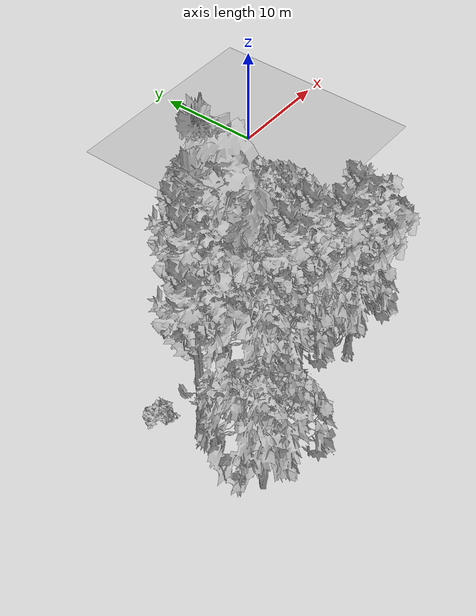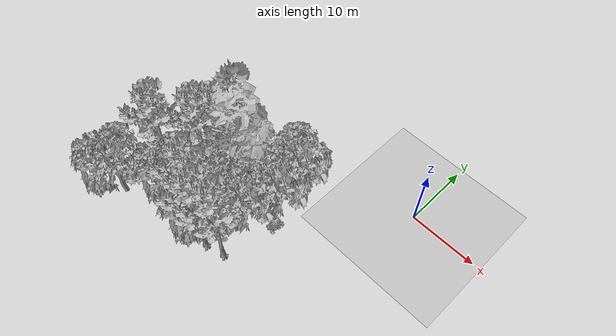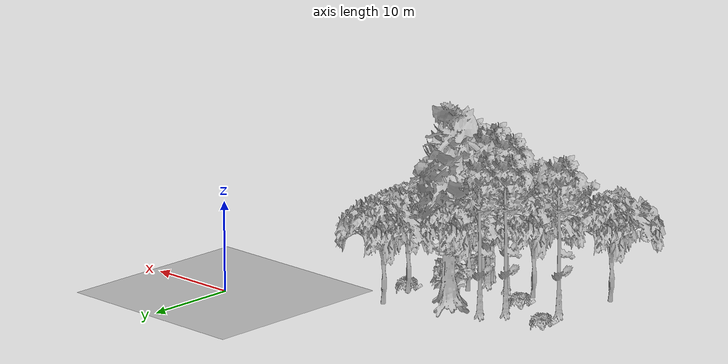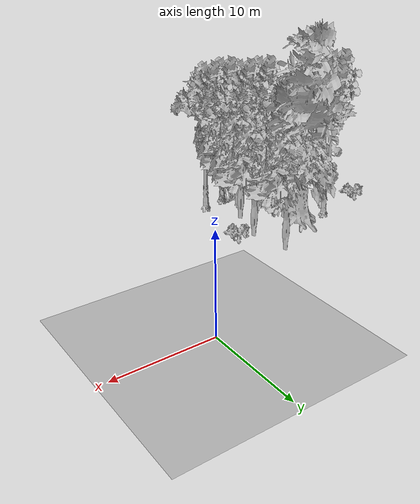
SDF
<sdf version="1.7">
 <world name="default">
  <model name="ground_plane">
   <static>1</static>
   <link name="link">
    <collision name="collision">
     <geometry><plane><normal>0 0 1</normal><size>100 100</size></plane></geometry>
     <surface><contact><ode><min_depth>0.01</min_depth><max_vel>0</max_vel></ode></contact></surface>
    </collision>
    <visual name="grass">
     <cast_shadows>0</cast_shadows>
     <geometry>
      <mesh>
       <scale>0.41000000000000003 0.41000000000000003 0.1</scale>
       <uri>file://grass_plane/meshes/grass_plane.dae</uri>
      </mesh>
     </geometry>
    </visual>
   </link>
  </model>
  <model name="Tree 68">
   <static>1</static>
   <pose>-20.85613020271379 -21.27397759455786 0 1.57079 -0 0</pose>
   <link name="link">
    <collision name="collision">
     <geometry><mesh><scale>5 5 5</scale><uri>model://tree_9/meshes/tree_9.obj</uri></mesh></geometry>
    </collision>
    <visual name="visual">
     <geometry><mesh><scale>5 5 5</scale><uri>model://tree_9/meshes/tree_9.obj</uri></mesh></geometry>
    </visual>
   </link>
  </model>
  <model name="Tree 109">
   <static>1</static>
   <pose>-18.044318254047667 -22.158993474650302 0 1.57079 -0 0</pose>
   <link name="link">
    <collision name="collision">
     <geometry><mesh><scale>5 5 5</scale><uri>model://tree_2/meshes/tree_2.obj</uri></mesh></geometry>
    </collision>
    <visual name="visual">
     <geometry><mesh><scale>5 5 5</scale><uri>model://tree_2/meshes/tree_2.obj</uri></mesh></geometry>
    </visual>
   </link>
  </model>
  <model name="Tree 186">
   <static>1</static>
   <pose>-31.621482010788085 -25.831532573165493 0 1.57079 -0 0</pose>
   <link name="link">
    <collision name="collision">
     <geometry><mesh><scale>5 5 5</scale><uri>model://tree_2/meshes/tree_2.obj</uri></mesh></geometry>
    </collision>
    <visual name="visual">
     <geometry><mesh><scale>5 5 5</scale><uri>model://tree_2/meshes/tree_2.obj</uri></mesh></geometry>
    </visual>
   </link>
  </model>
  <model name="Tree 275">
   <static>1</static>
   <pose>-18.407030141554333 -18.08380873327686 0 1.57079 -0 0</pose>
   <link name="link">
    <collision name="collision">
     <geometry><mesh><scale>5 5 5</scale><uri>model://tree_2/meshes/tree_2.obj</uri></mesh></geometry>
    </collision>
    <visual name="visual">
     <geometry><mesh><scale>5 5 5</scale><uri>model://tree_2/meshes/tree_2.obj</uri></mesh></geometry>
    </visual>
   </link>
  </model>
  <model name="Tree 292">
   <static>1</static>
   <pose>-18.081707227203406 -21.30981378207448 0 1.57079 -0 0</pose>
   <link name="link">
    <collision name="collision">
     <geometry><mesh><scale>5 5 5</scale><uri>model://tree_9/meshes/tree_9.obj</uri></mesh></geometry>
    </collision>
    <visual name="visual">
     <geometry><mesh><scale>5 5 5</scale><uri>model://tree_9/meshes/tree_9.obj</uri></mesh></geometry>
    </visual>
   </link>
  </model>
  <model name="Tree 303">
   <static>1</static>
   <pose>-14.913574780661378 -8.78419512537264 0 1.57079 -0 0</pose>
   <link name="link">
    <collision name="collision">
     <geometry><mesh><scale>5 5 5</scale><uri>model://tree_2/meshes/tree_2.obj</uri></mesh></geometry>
    </collision>
    <visual name="visual">
     <geometry><mesh><scale>5 5 5</scale><uri>model://tree_2/meshes/tree_2.obj</uri></mesh></geometry>
    </visual>
   </link>
  </model>
  <model name="Tree 307">
   <static>1</static>
   <pose>-17.61760655635346 -20.99757013027722 0 1.57079 -0 0</pose>
   <link name="link">
    <collision name="collision">
     <geometry><mesh><scale>5 5 5</scale><uri>model://tree_2/meshes/tree_2.obj</uri></mesh></geometry>
    </collision>
    <visual name="visual">
     <geometry><mesh><scale>5 5 5</scale><uri>model://tree_2/meshes/tree_2.obj</uri></mesh></geometry>
    </visual>
   </link>
  </model>
  <model name="Tree 326">
   <static>1</static>
   <pose>-14.108015775769509 -22.625026654799797 0 1.57079 -0 0</pose>
   <link name="link">
    <collision name="collision">
     <geometry><mesh><scale>5 5 5</scale><uri>model://tree_9/meshes/tree_9.obj</uri></mesh></geometry>
    </collision>
    <visual name="visual">
     <geometry><mesh><scale>5 5 5</scale><uri>model://tree_9/meshes/tree_9.obj</uri></mesh></geometry>
    </visual>
   </link>
  </model>
  <model name="Tree 332">
   <static>1</static>
   <pose>-14.19754366162212 -13.25863289107452 0 1.57079 -0 0</pose>
   <link name="link">
    <collision name="collision">
     <geometry><mesh><scale>5 5 5</scale><uri>model://tree_2/meshes/tree_2.obj</uri></mesh></geometry>
    </collision>
    <visual name="visual">
     <geometry><mesh><scale>5 5 5</scale><uri>model://tree_2/meshes/tree_2.obj</uri></mesh></geometry>
    </visual>
   </link>
  </model>
  <model name="Tree 334">
   <static>1</static>
   <pose>-24.312002417522095 -13.295940552619044 0 1.57079 -0 0</pose>
   <link name="link">
    <collision name="collision">
     <geometry><mesh><scale>5 5 5</scale><uri>model://tree_9/meshes/tree_9.obj</uri></mesh></geometry>
    </collision>
    <visual name="visual">
     <geometry><mesh><scale>5 5 5</scale><uri>model://tree_9/meshes/tree_9.obj</uri></mesh></geometry>
    </visual>
   </link>
  </model>
  <model name="Tree 354">
   <static>1</static>
   <pose>-24.93131574499724 -21.111950874562247 0 1.57079 -0 0</pose>
   <link name="link">
    <collision name="collision">
     <geometry><mesh><scale>5 5 5</scale><uri>model://tree_2/meshes/tree_2.obj</uri></mesh></geometry>
    </collision>
    <visual name="visual">
     <geometry><mesh><scale>5 5 5</scale><uri>model://tree_2/meshes/tree_2.obj</uri></mesh></geometry>
    </visual>
   </link>
  </model>
  <model name="Tree 383">
   <static>1</static>
   <pose>-15.647386984022432 -17.670154728674646 0 1.57079 -0 0</pose>
   <link name="link">
    <collision name="collision">
     <geometry><mesh><scale>5 5 5</scale><uri>model://tree_2/meshes/tree_2.obj</uri></mesh></geometry>
    </collision>
    <visual name="visual">
     <geometry><mesh><scale>5 5 5</scale><uri>model://tree_2/meshes/tree_2.obj</uri></mesh></geometry>
    </visual>
   </link>
  </model>
  <model name="Tree 411">
   <static>1</static>
   <pose>-16.883957403547782 -23.30895235521313 0 1.57079 -0 0</pose>
   <link name="link">
    <collision name="collision">
     <geometry><mesh><scale>5 5 5</scale><uri>model://tree_9/meshes/tree_9.obj</uri></mesh></geometry>
    </collision>
    <visual name="visual">
     <geometry><mesh><scale>5 5 5</scale><uri>model://tree_9/meshes/tree_9.obj</uri></mesh></geometry>
    </visual>
   </link>
  </model>
  <model name="Tree 412">
   <static>1</static>
   <pose>-20.452195706555372 -12.830890614539534 0 1.57079 -0 0</pose>
   <link name="link">
    <collision name="collision">
     <geometry><mesh><scale>5 5 5</scale><uri>model://tree_4/meshes/tree_4.obj</uri></mesh></geometry>
    </collision>
    <visual name="visual">
     <geometry><mesh><scale>5 5 5</scale><uri>model://tree_4/meshes/tree_4.obj</uri></mesh></geometry>
    </visual>
   </link>
  </model>
  <model name="Tree 423">
   <static>1</static>
   <pose>-30.29818477126853 -18.9280716475167 0 1.57079 -0 0</pose>
   <link name="link">
    <collision name="collision">
     <geometry><mesh><scale>5 5 5</scale><uri>model://tree_9/meshes/tree_9.obj</uri></mesh></geometry>
    </collision>
    <visual name="visual">
     <geometry><mesh><scale>5 5 5</scale><uri>model://tree_9/meshes/tree_9.obj</uri></mesh></geometry>
    </visual>
   </link>
  </model>
  <model name="Tree 426">
   <static>1</static>
   <pose>-19.769860203672128 -14.944252016866841 0 1.57079 -0 0</pose>
   <link name="link">
    <collision name="collision">
     <geometry><mesh><scale>5 5 5</scale><uri>model://tree_2/meshes/tree_2.obj</uri></mesh></geometry>
    </collision>
    <visual name="visual">
     <geometry><mesh><scale>5 5 5</scale><uri>model://tree_2/meshes/tree_2.obj</uri></mesh></geometry>
    </visual>
   </link>
  </model>
  <model name="Tree 485">
   <static>1</static>
   <pose>-26.0786702840868 -15.364509413307637 0 1.57079 -0 0</pose>
   <link name="link">
    <collision name="collision">
     <geometry><mesh><scale>5 5 5</scale><uri>model://tree_9/meshes/tree_9.obj</uri></mesh></geometry>
    </collision>
    <visual name="visual">
     <geometry><mesh><scale>5 5 5</scale><uri>model://tree_9/meshes/tree_9.obj</uri></mesh></geometry>
    </visual>
   </link>
  </model>
  <model name="Bush 15">
   <static>1</static>
   <pose>-31.201467127249934 -15.571481662002952 0 1.57079 -0 0</pose>
   <link name="link">
    <collision name="collision">
     <geometry><mesh><scale>2 2 2</scale><uri>model://bush_2/meshes/bush_2.obj</uri></mesh></geometry>
    </collision>
    <visual name="visual">
     <geometry><mesh><scale>5 5 5</scale><uri>model://bush_2/meshes/bush_2.obj</uri></mesh></geometry>
    </visual>
   </link>
  </model>
  <model name="Bush 20">
   <static>1</static>
   <pose>-16.83612294812972 -21.920979918639595 0 1.57079 -0 0</pose>
   <link name="link">
    <collision name="collision">
     <geometry><mesh><scale>2 2 2</scale><uri>model://bush_4/meshes/bush_4.obj</uri></mesh></geometry>
    </collision>
    <visual name="visual">
     <geometry><mesh><scale>5 5 5</scale><uri>model://bush_4/meshes/bush_4.obj</uri></mesh></geometry>
    </visual>
   </link>
  </model>
  <model name="Bush 31">
   <static>1</static>
   <pose>-12.924426158795413 -14.649970718511973 0 1.57079 -0 0</pose>
   <link name="link">
    <collision name="collision">
     <geometry><mesh><scale>2 2 2</scale><uri>model://bush_2/meshes/bush_2.obj</uri></mesh></geometry>
    </collision>
    <visual name="visual">
     <geometry><mesh><scale>5 5 5</scale><uri>model://bush_2/meshes/bush_2.obj</uri></mesh></geometry>
    </visual>
   </link>
  </model>
  <model name="Bush 73">
   <static>1</static>
   <pose>-25.05188404693697 -19.06455192061688 0 1.57079 -0 0</pose>
   <link name="link">
    <collision name="collision">
     <geometry><mesh><scale>2 2 2</scale><uri>model://bush_2/meshes/bush_2.obj</uri></mesh></geometry>
    </collision>
    <visual name="visual">
     <geometry><mesh><scale>5 5 5</scale><uri>model://bush_2/meshes/bush_2.obj</uri></mesh></geometry>
    </visual>
   </link>
  </model>
  <model name="Bush 97">
   <static>1</static>
   <pose>-18.71863539602417 -15.486902252365923 0 1.57079 -0 0</pose>
   <link name="link">
    <collision name="collision">
     <geometry><mesh><scale>2 2 2</scale><uri>model://bush_1/meshes/bush_1.obj</uri></mesh></geometry>
    </collision>
    <visual name="visual">
     <geometry><mesh><scale>5 5 5</scale><uri>model://bush_1/meshes/bush_1.obj</uri></mesh></geometry>
    </visual>
   </link>
  </model>
 </world>
</sdf>
